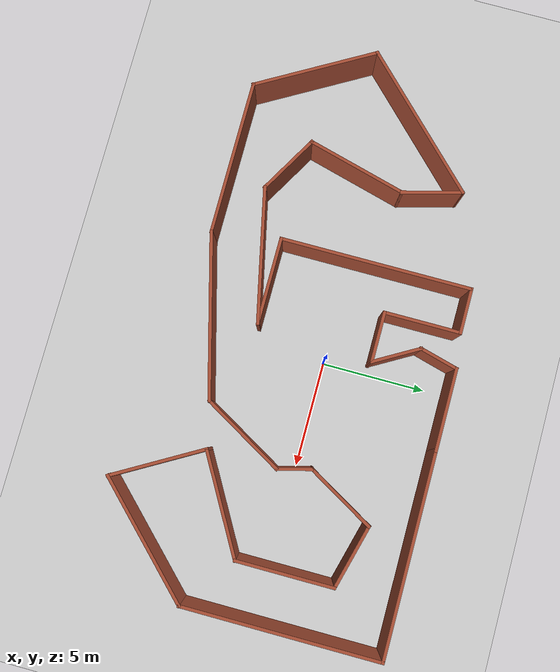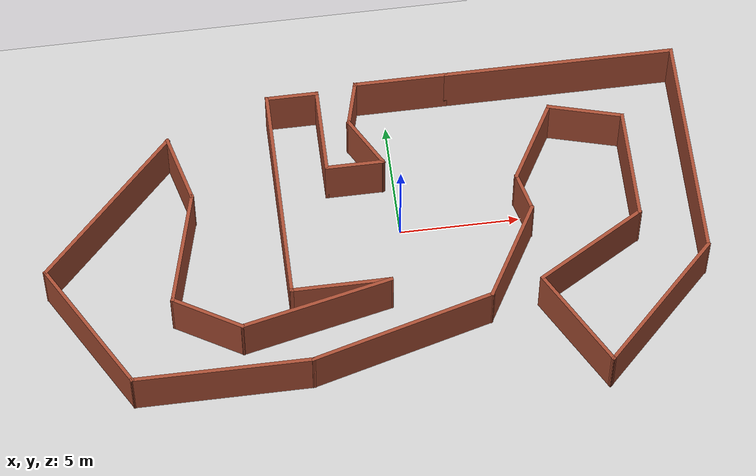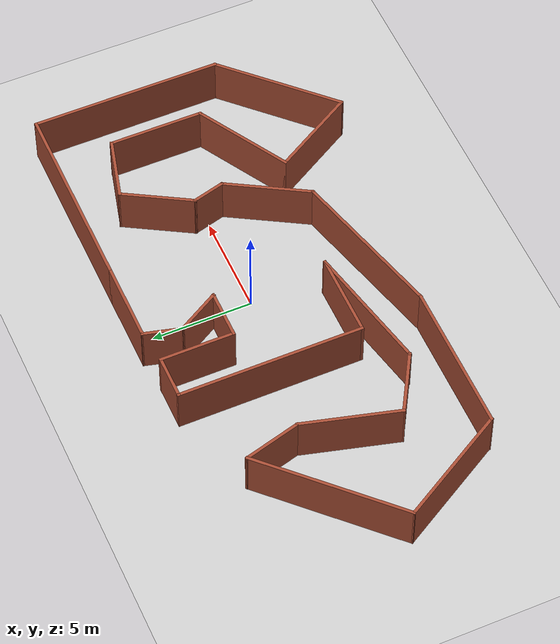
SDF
<sdf version="1.6">
 <world name="default">
  <light name="sun" type="directional">
   <pose>0 0 10 0 -0 0</pose>
   <diffuse>0.8 0.8 0.8 1</diffuse>
   <specular>0.1 0.1 0.1 1</specular>
   <attenuation>
    <range>1000</range>
    <constant>0.9</constant>
    <linear>0.01</linear>
    <quadratic>0.001</quadratic>
   </attenuation>
   <direction>-0.5 0.5 -1</direction>
  </light>
  <model name="ground_plane">
   <static>1</static>
   <link name="link">
    <collision name="collision">
     <geometry><plane><normal>0 0 1</normal><size>100 100</size></plane></geometry>
     <surface><friction><ode><mu>100</mu><mu2>50</mu2></ode></friction></surface>
    </collision>
    <visual name="visual">
     <cast_shadows>0</cast_shadows>
     <geometry><plane><normal>0 0 1</normal><size>100 100</size></plane></geometry>
     <material>
      <script><uri>file://media/materials/scripts/gazebo.material</uri><name>Gazebo/Grey</name></script>
     </material>
    </visual>
   </link>
  </model>
  <gravity>0 0 -9.8</gravity>
  <magnetic_field>6e-06 2.3e-05 -4.2e-05</magnetic_field>
  <atmosphere type="adiabatic"/>
  <physics name="default_physics" default="0" type="ode">
   <max_step_size>0.001</max_step_size>
   <real_time_factor>1</real_time_factor>
   <real_time_update_rate>1000</real_time_update_rate>
  </physics>
  <scene><ambient>0.4 0.4 0.4 1</ambient><background>0.7 0.7 0.7 1</background><shadows>1</shadows></scene>
  <spherical_coordinates>
   <surface_model>EARTH_WGS84</surface_model>
   <latitude_deg>0</latitude_deg>
   <longitude_deg>0</longitude_deg>
   <elevation>0</elevation>
   <heading_deg>0</heading_deg>
  </spherical_coordinates>
  <model name="Lab1">
   <pose>-1.26616 -1.09928 0 0 -0 0</pose>
   <link name="Wall_0">
    <collision name="Wall_0_Collision">
     <geometry><box><size>4.25 0.15 2.5</size></box></geometry>
     <pose>0 0 1.25 0 -0 0</pose>
    </collision>
    <visual name="Wall_0_Visual">
     <pose>0 0 1.25 0 -0 0</pose>
     <geometry><box><size>4.25 0.15 2.5</size></box></geometry>
     <material>
      <script><uri>file://media/materials/scripts/gazebo.material</uri><name>Gazebo/Bricks</name></script>
      <ambient>1 1 1 1</ambient>
     </material>
    </visual>
    <pose>-1.60984 -2.30656 0 0 -0 3.14159</pose>
   </link>
   <link name="Wall_1">
    <collision name="Wall_1_Collision">
     <geometry><box><size>9.25 0.15 2.5</size></box></geometry>
     <pose>0 0 1.25 0 -0 0</pose>
    </collision>
    <visual name="Wall_1_Visual">
     <pose>0 0 1.25 0 -0 0</pose>
     <geometry><box><size>9.25 0.15 2.5</size></box></geometry>
     <material>
      <script><uri>file://media/materials/scripts/gazebo.material</uri><name>Gazebo/Bricks</name></script>
      <ambient>1 1 1 1</ambient>
     </material>
    </visual>
    <pose>-3.65984 2.24344 0 0 -0 1.5708</pose>
   </link>
   <link name="Wall_10">
    <collision name="Wall_10_Collision">
     <geometry><box><size>6.75 0.15 2.5</size></box></geometry>
     <pose>0 0 1.25 0 -0 0</pose>
    </collision>
    <visual name="Wall_10_Visual">
     <pose>0 0 1.25 0 -0 0</pose>
     <geometry><box><size>6.75 0.15 2.5</size></box></geometry>
     <material>
      <script><uri>file://media/materials/scripts/gazebo.material</uri><name>Gazebo/Bricks</name></script>
      <ambient>1 1 1 1</ambient>
     </material>
    </visual>
    <pose>11.2105 -4.66789 0 0 0 -2.35619</pose>
   </link>
   <link name="Wall_11">
    <collision name="Wall_11_Collision">
     <geometry><box><size>4.75 0.15 2.5</size></box></geometry>
     <pose>0 0 1.25 0 -0 0</pose>
    </collision>
    <visual name="Wall_11_Visual">
     <pose>0 0 1.25 0 -0 0</pose>
     <geometry><box><size>4.75 0.15 2.5</size></box></geometry>
     <material>
      <script><uri>file://media/materials/scripts/gazebo.material</uri><name>Gazebo/Bricks</name></script>
      <ambient>1 1 1 1</ambient>
     </material>
    </visual>
    <pose>7.72707 -5.00949 0 0 -0 2.0944</pose>
   </link>
   <link name="Wall_12">
    <collision name="Wall_12_Collision">
     <geometry><box><size>5.25 0.15 2.5</size></box></geometry>
     <pose>0 0 1.25 0 -0 0</pose>
    </collision>
    <visual name="Wall_12_Visual">
     <pose>0 0 1.25 0 -0 0</pose>
     <geometry><box><size>5.25 0.15 2.5</size></box></geometry>
     <material>
      <script><uri>file://media/materials/scripts/gazebo.material</uri><name>Gazebo/Bricks</name></script>
      <ambient>1 1 1 1</ambient>
     </material>
    </visual>
    <pose>8.78544 -1.74263 0 0 -0 0.523599</pose>
   </link>
   <link name="Wall_13">
    <collision name="Wall_13_Collision">
     <geometry><box><size>4.75 0.15 2.5</size></box></geometry>
     <pose>0 0 1.25 0 -0 0</pose>
    </collision>
    <visual name="Wall_13_Visual">
     <pose>0 0 1.25 0 -0 0</pose>
     <geometry><box><size>4.75 0.15 2.5</size></box></geometry>
     <material>
      <script><uri>file://media/materials/scripts/gazebo.material</uri><name>Gazebo/Bricks</name></script>
      <ambient>1 1 1 1</ambient>
     </material>
    </visual>
    <pose>10.9938 1.83237 0 0 -0 1.5708</pose>
   </link>
   <link name="Wall_14">
    <collision name="Wall_14_Collision">
     <geometry><box><size>3.25 0.15 2.5</size></box></geometry>
     <pose>0 0 1.25 0 -0 0</pose>
    </collision>
    <visual name="Wall_14_Visual">
     <pose>0 0 1.25 0 -0 0</pose>
     <geometry><box><size>3.25 0.15 2.5</size></box></geometry>
     <material>
      <script><uri>file://media/materials/scripts/gazebo.material</uri><name>Gazebo/Bricks</name></script>
      <ambient>1 1 1 1</ambient>
     </material>
    </visual>
    <pose>9.49662 4.53354 0 0 -0 2.87979</pose>
   </link>
   <link name="Wall_15">
    <collision name="Wall_15_Collision">
     <geometry><box><size>3.75 0.15 2.5</size></box></geometry>
     <pose>0 0 1.25 0 -0 0</pose>
    </collision>
    <visual name="Wall_15_Visual">
     <pose>0 0 1.25 0 -0 0</pose>
     <geometry><box><size>3.75 0.15 2.5</size></box></geometry>
     <material>
      <script><uri>file://media/materials/scripts/gazebo.material</uri><name>Gazebo/Bricks</name></script>
      <ambient>1 1 1 1</ambient>
     </material>
    </visual>
    <pose>7.09943 3.37586 0 0 0 -2.0944</pose>
   </link>
   <link name="Wall_16">
    <collision name="Wall_16_Collision">
     <geometry><box><size>1.75 0.15 2.5</size></box></geometry>
     <pose>0 0 1.25 0 -0 0</pose>
    </collision>
    <visual name="Wall_16_Visual">
     <pose>0 0 1.25 0 -0 0</pose>
     <geometry><box><size>1.75 0.15 2.5</size></box></geometry>
     <material>
      <script><uri>file://media/materials/scripts/gazebo.material</uri><name>Gazebo/Bricks</name></script>
      <ambient>1 1 1 1</ambient>
     </material>
    </visual>
    <pose>6.40649 1.04428 0 0 0 -1.309</pose>
   </link>
   <link name="Wall_17">
    <collision name="Wall_17_Collision">
     <geometry><box><size>4.5 0.15 2.5</size></box></geometry>
     <pose>0 0 1.25 0 -0 0</pose>
    </collision>
    <visual name="Wall_17_Visual">
     <pose>0 0 1.25 0 -0 0</pose>
     <geometry><box><size>4.5 0.15 2.5</size></box></geometry>
     <material>
      <script><uri>file://media/materials/scripts/gazebo.material</uri><name>Gazebo/Bricks</name></script>
      <ambient>1 1 1 1</ambient>
     </material>
    </visual>
    <pose>5.52604 -1.61207 0 0 0 -2.0944</pose>
   </link>
   <link name="Wall_18">
    <collision name="Wall_18_Collision">
     <geometry><box><size>8 0.15 2.5</size></box></geometry>
     <pose>0 0 1.25 0 -0 0</pose>
    </collision>
    <visual name="Wall_18_Visual">
     <pose>0 0 1.25 0 -0 0</pose>
     <geometry><box><size>8 0.15 2.5</size></box></geometry>
     <material>
      <script><uri>file://media/materials/scripts/gazebo.material</uri><name>Gazebo/Bricks</name></script>
      <ambient>1 1 1 1</ambient>
     </material>
    </visual>
    <pose>0.647282 -4.51154 0 0 0 -2.87979</pose>
   </link>
   <link name="Wall_19">
    <collision name="Wall_19_Collision">
     <geometry><box><size>7.5 0.15 2.5</size></box></geometry>
     <pose>0 0 1.25 0 -0 0</pose>
    </collision>
    <visual name="Wall_19_Visual">
     <pose>0 0 1.25 0 -0 0</pose>
     <geometry><box><size>7.5 0.15 2.5</size></box></geometry>
     <material>
      <script><uri>file://media/materials/scripts/gazebo.material</uri><name>Gazebo/Bricks</name></script>
      <ambient>1 1 1 1</ambient>
     </material>
    </visual>
    <pose>-6.81898 -5.5274 0 0 -0 3.14159</pose>
   </link>
   <link name="Wall_2">
    <collision name="Wall_2_Collision">
     <geometry><box><size>2.25 0.15 2.5</size></box></geometry>
     <pose>0 0 1.25 0 -0 0</pose>
    </collision>
    <visual name="Wall_2_Visual">
     <pose>0 0 1.25 0 -0 0</pose>
     <geometry><box><size>2.25 0.15 2.5</size></box></geometry>
     <material>
      <script><uri>file://media/materials/scripts/gazebo.material</uri><name>Gazebo/Bricks</name></script>
      <ambient>1 1 1 1</ambient>
     </material>
    </visual>
    <pose>-2.60984 6.79343 0 0 -0 0</pose>
   </link>
   <link name="Wall_20">
    <collision name="Wall_20_Collision">
     <geometry><box><size>6.25 0.15 2.5</size></box></geometry>
     <pose>0 0 1.25 0 -0 0</pose>
    </collision>
    <visual name="Wall_20_Visual">
     <pose>0 0 1.25 0 -0 0</pose>
     <geometry><box><size>6.25 0.15 2.5</size></box></geometry>
     <material>
      <script><uri>file://media/materials/scripts/gazebo.material</uri><name>Gazebo/Bricks</name></script>
      <ambient>1 1 1 1</ambient>
     </material>
    </visual>
    <pose>-12.019 -2.88603 0 0 -0 2.0944</pose>
   </link>
   <link name="Wall_21">
    <collision name="Wall_21_Collision">
     <geometry><box><size>8 0.15 2.5</size></box></geometry>
     <pose>0 0 1.25 0 -0 0</pose>
    </collision>
    <visual name="Wall_21_Visual">
     <pose>0 0 1.25 0 -0 0</pose>
     <geometry><box><size>8 0.15 2.5</size></box></geometry>
     <material>
      <script><uri>file://media/materials/scripts/gazebo.material</uri><name>Gazebo/Bricks</name></script>
      <ambient>1 1 1 1</ambient>
     </material>
    </visual>
    <pose>-10.7686 2.53075 0 0 -0 0.785398</pose>
   </link>
   <link name="Wall_22">
    <collision name="Wall_22_Collision">
     <geometry><box><size>3 0.15 2.5</size></box></geometry>
     <pose>0 0 1.25 0 -0 0</pose>
    </collision>
    <visual name="Wall_22_Visual">
     <pose>0 0 1.25 0 -0 0</pose>
     <geometry><box><size>3 0.15 2.5</size></box></geometry>
     <material>
      <script><uri>file://media/materials/scripts/gazebo.material</uri><name>Gazebo/Bricks</name></script>
      <ambient>1 1 1 1</ambient>
     </material>
    </visual>
    <pose>-7.62437 3.9297 0 0 0 -1.309</pose>
   </link>
   <link name="Wall_23">
    <collision name="Wall_23_Collision">
     <geometry><box><size>5 0.15 2.5</size></box></geometry>
     <pose>0 0 1.25 0 -0 0</pose>
    </collision>
    <visual name="Wall_23_Visual">
     <pose>0 0 1.25 0 -0 0</pose>
     <geometry><box><size>5 0.15 2.5</size></box></geometry>
     <material>
      <script><uri>file://media/materials/scripts/gazebo.material</uri><name>Gazebo/Bricks</name></script>
      <ambient>1 1 1 1</ambient>
     </material>
    </visual>
    <pose>-7.88319 0.210881 0 0 0 -1.8326</pose>
   </link>
   <link name="Wall_24">
    <collision name="Wall_24_Collision">
     <geometry><box><size>3.25 0.15 2.5</size></box></geometry>
     <pose>0 0 1.25 0 -0 0</pose>
    </collision>
    <visual name="Wall_24_Visual">
     <pose>0 0 1.25 0 -0 0</pose>
     <geometry><box><size>3.25 0.15 2.5</size></box></geometry>
     <material>
      <script><uri>file://media/materials/scripts/gazebo.material</uri><name>Gazebo/Bricks</name></script>
      <ambient>1 1 1 1</ambient>
     </material>
    </visual>
    <pose>-7.16849 -2.90649 0 0 0 -0.523599</pose>
   </link>
   <link name="Wall_25">
    <collision name="Wall_25_Collision">
     <geometry><box><size>6.56538 0.15 2.5</size></box></geometry>
     <pose>0 0 1.25 0 -0 0</pose>
    </collision>
    <visual name="Wall_25_Visual">
     <pose>0 0 1.25 0 -0 0</pose>
     <geometry><box><size>6.56538 0.15 2.5</size></box></geometry>
     <material>
      <script><uri>file://media/materials/scripts/gazebo.material</uri><name>Gazebo/Bricks</name></script>
      <ambient>1 1 1 1</ambient>
     </material>
    </visual>
    <pose>-2.69299 -2.99403 0 0 -0 0.215993</pose>
   </link>
   <link name="Wall_3">
    <collision name="Wall_3_Collision">
     <geometry><box><size>3.75 0.15 2.5</size></box></geometry>
     <pose>0 0 1.25 0 -0 0</pose>
    </collision>
    <visual name="Wall_3_Visual">
     <pose>0 0 1.25 0 -0 0</pose>
     <geometry><box><size>3.75 0.15 2.5</size></box></geometry>
     <material>
      <script><uri>file://media/materials/scripts/gazebo.material</uri><name>Gazebo/Bricks</name></script>
      <ambient>1 1 1 1</ambient>
     </material>
    </visual>
    <pose>-1.55984 4.99344 0 0 0 -1.5708</pose>
   </link>
   <link name="Wall_4">
    <collision name="Wall_4_Collision">
     <geometry><box><size>2.5 0.15 2.5</size></box></geometry>
     <pose>0 0 1.25 0 -0 0</pose>
    </collision>
    <visual name="Wall_4_Visual">
     <pose>0 0 1.25 0 -0 0</pose>
     <geometry><box><size>2.5 0.15 2.5</size></box></geometry>
     <material>
      <script><uri>file://media/materials/scripts/gazebo.material</uri><name>Gazebo/Bricks</name></script>
      <ambient>1 1 1 1</ambient>
     </material>
    </visual>
    <pose>-0.38484 3.19344 0 0 -0 0</pose>
   </link>
   <link name="Wall_5">
    <collision name="Wall_5_Collision">
     <geometry><box><size>2.5 0.15 2.5</size></box></geometry>
     <pose>0 0 1.25 0 -0 0</pose>
    </collision>
    <visual name="Wall_5_Visual">
     <pose>0 0 1.25 0 -0 0</pose>
     <geometry><box><size>2.5 0.15 2.5</size></box></geometry>
     <material>
      <script><uri>file://media/materials/scripts/gazebo.material</uri><name>Gazebo/Bricks</name></script>
      <ambient>1 1 1 1</ambient>
     </material>
    </visual>
    <pose>0.20266 4.21101 0 0 -0 2.0944</pose>
   </link>
   <link name="Wall_6">
    <collision name="Wall_6_Collision">
     <geometry><box><size>2 0.15 2.5</size></box></geometry>
     <pose>0 0 1.25 0 -0 0</pose>
    </collision>
    <visual name="Wall_6_Visual">
     <pose>0 0 1.25 0 -0 0</pose>
     <geometry><box><size>2 0.15 2.5</size></box></geometry>
     <material>
      <script><uri>file://media/materials/scripts/gazebo.material</uri><name>Gazebo/Bricks</name></script>
      <ambient>1 1 1 1</ambient>
     </material>
    </visual>
    <pose>-0.145432 6.12208 0 0 -0 1.309</pose>
   </link>
   <link name="Wall_7">
    <collision name="Wall_7_Collision">
     <geometry><box><size>4 0.15 2.5</size></box></geometry>
     <pose>0 0 1.25 0 -0 0</pose>
    </collision>
    <visual name="Wall_7_Visual">
     <pose>0 0 1.25 0 -0 0</pose>
     <geometry><box><size>4 0.15 2.5</size></box></geometry>
     <material>
      <script><uri>file://media/materials/scripts/gazebo.material</uri><name>Gazebo/Bricks</name></script>
      <ambient>1 1 1 1</ambient>
     </material>
    </visual>
    <pose>2.01898 7.01556 0 0 -0 0</pose>
   </link>
   <link name="Wall_8">
    <collision name="Wall_8_Collision">
     <geometry><box><size>9.75 0.15 2.5</size></box></geometry>
     <pose>0 0 1.25 0 -0 0</pose>
    </collision>
    <visual name="Wall_8_Visual">
     <pose>0 0 1.25 0 -0 0</pose>
     <geometry><box><size>9.75 0.15 2.5</size></box></geometry>
     <material>
      <script><uri>file://media/materials/scripts/gazebo.material</uri><name>Gazebo/Bricks</name></script>
      <ambient>1 1 1 1</ambient>
     </material>
    </visual>
    <pose>8.74398 7.01556 0 0 -0 0</pose>
   </link>
   <link name="Wall_9">
    <collision name="Wall_9_Collision">
     <geometry><box><size>9.5 0.15 2.5</size></box></geometry>
     <pose>0 0 1.25 0 -0 0</pose>
    </collision>
    <visual name="Wall_9_Visual">
     <pose>0 0 1.25 0 -0 0</pose>
     <geometry><box><size>9.5 0.15 2.5</size></box></geometry>
     <material>
      <script><uri>file://media/materials/scripts/gazebo.material</uri><name>Gazebo/Bricks</name></script>
      <ambient>1 1 1 1</ambient>
     </material>
    </visual>
    <pose>13.544 2.34056 0 0 0 -1.5708</pose>
   </link>
   <static>1</static>
  </model>
 </world>
</sdf>
